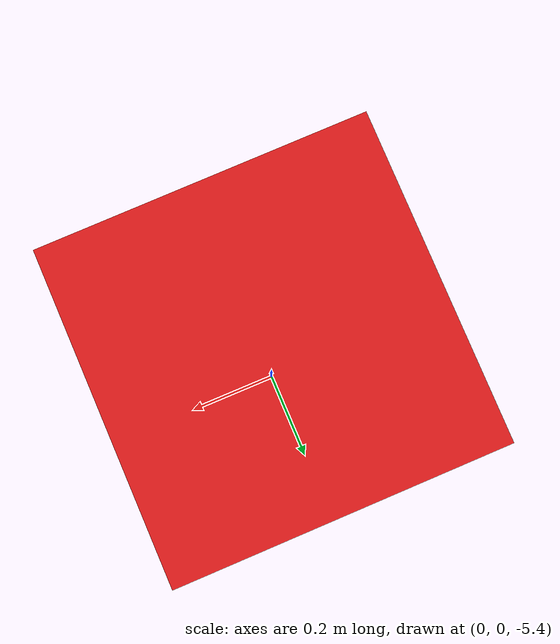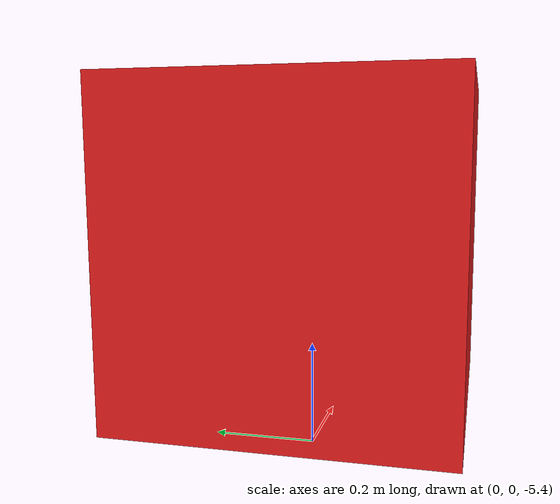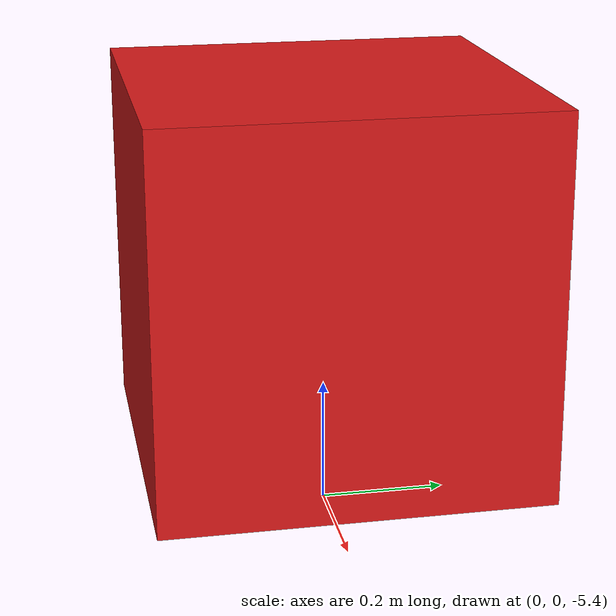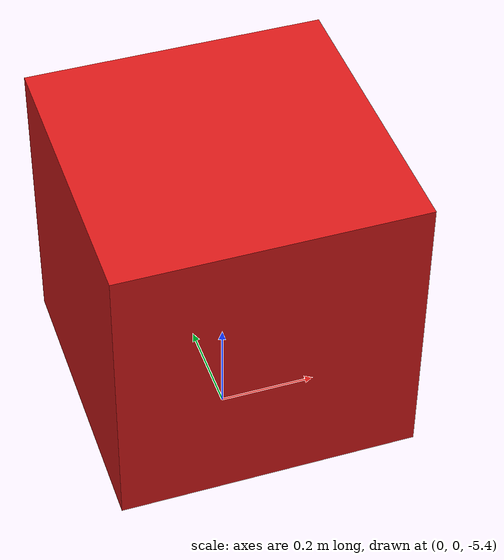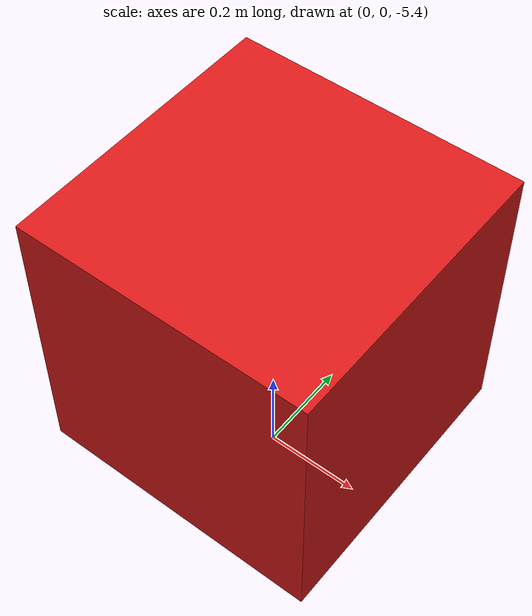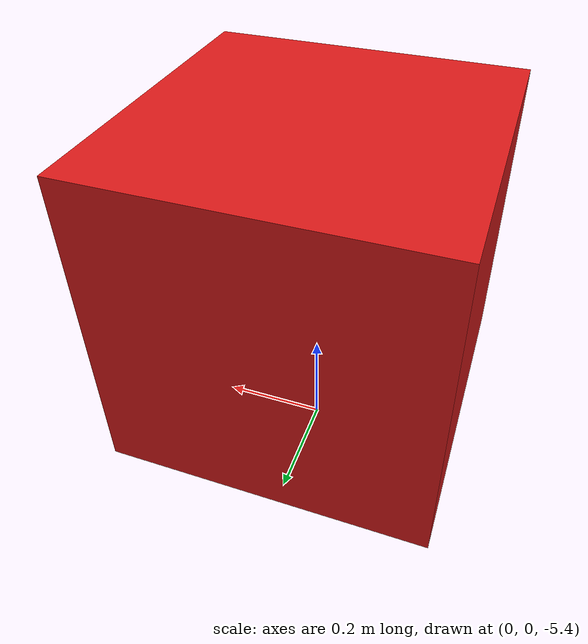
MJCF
<mujoco model="plataforma_gigante_aesir">

    <asset>

        <!-- Cielo -->
        <texture type="skybox"
                 builtin="gradient"
                 rgb1="0.4 0.6 0.8"
                 rgb2="0 0 0"
                 width="512"
                 height="512"/>

        <!-- Piso -->
        <texture name="tex_piso"
                 type="2d"
                 builtin="checker"
                 rgb1="0.15 0.1 0.1"
                 rgb2="0.08 0.05 0.05"
                 width="512"
                 height="512"/>

        <material name="mat_piso"
                  texture="tex_piso"
                  texrepeat="20 20"
                  texuniform="true"
                  reflectance="0.1"/>

        <!-- Plataforma -->
        <texture name="tex_plataforma"
                 type="2d"
                 builtin="flat"
                 rgb1="0.8 0.4 0.1"
                 rgb2="0.1 0.15 0.2"
                 width="512"
                 height="512"/>

        <material name="mat_plataforma"
                  texture="tex_plataforma"
                  texrepeat="40 40"
                  texuniform="true"
                  reflectance="0.1"/>

        <!-- Rampa STL -->
        <mesh
            name="rampa_mesh"
            file="rampa.stl"
            scale="0.001 0.001 0.001"/>

    </asset>

    <worldbody>

        <light directional="true"
               pos="0 0 10"
               dir="0 0 -1"/>

        <!-- Piso -->
        <geom
            name="suelo"
            type="plane"
            size="40 40 0.1"
            material="mat_piso"
            condim="3"
            friction="1 0.005 0.0001"/>

        <!-- Plataforma -->
        <geom
            name="plataforma_gigante"
            type="box"
            size="10 10 0.06"
            pos="0 0 0.06"
            material="mat_plataforma"
            condim="3"
            friction="1 0.005 0.0001"/>

        <!-- Obstáculo virtual -->
        <geom
            name="virtual_obstacle"
            type="box"
            size="0.3 0.3 0.3"
            pos="0 0 -5"
            rgba="0.85 0.1 0.1 1"
            condim="3"
            friction="1 0.005 0.0001"/>

        <!-- LAS RAMPAS SE INSERTAN AQUI -->

    </worldbody>

</mujoco>
